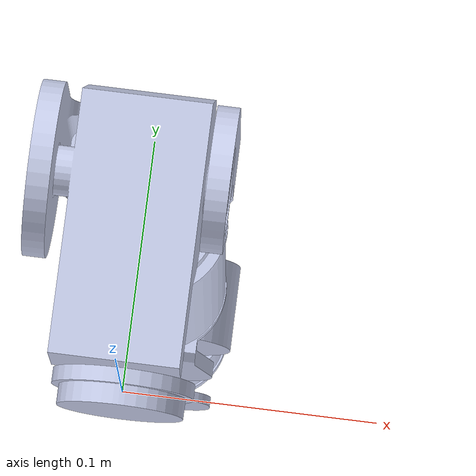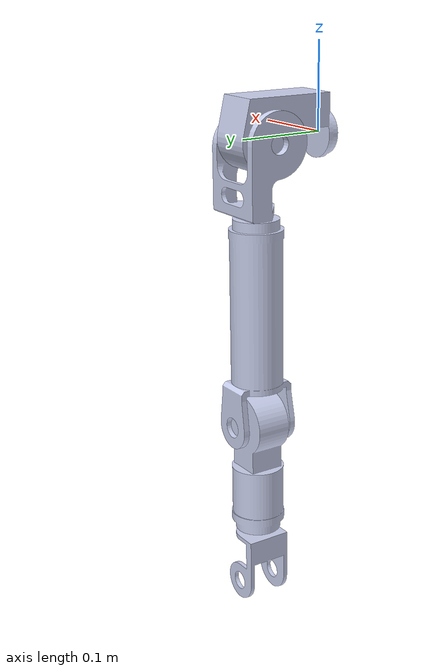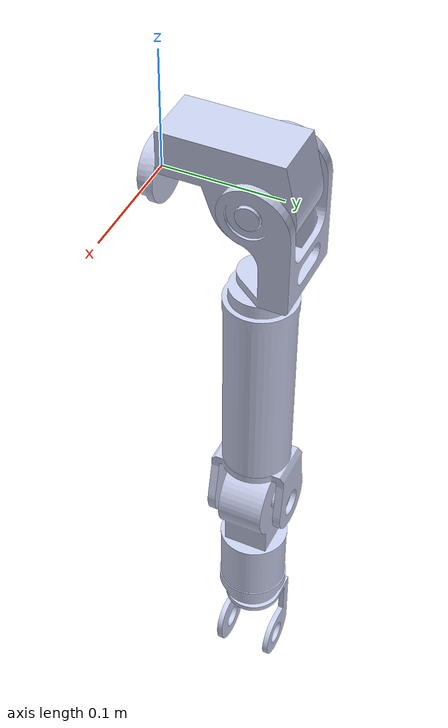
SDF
<?xml version='1.0'?>
<sdf version='1.6'>
  <model name='TEO_leftArm'>

    <link name='FrontalLeftShoulder_link'>
      <pose>0 0 0 0 -0 0</pose>
      <inertial>
        <pose>-0.002272 0.056186 0.008165 0 -0 0</pose>
        <mass>2</mass>
        <inertia>
          <ixx>0.004226791</ixx>
          <ixy>-0.0000855</ixy>
          <ixz>-0.0000117</ixz>
          <iyy>0.00212734</iyy>
          <iyz>0.000280493</iyz>
          <izz>0.00409322</izz>
        </inertia>
      </inertial>
      <visual name='FrontalLeftShoulder_visual'>
        <geometry>
          <mesh>
            <uri>model://teo/meshes/visual/FrontalLeftShoulder.dae</uri>
          </mesh>
        </geometry>
        <material>
          <ambient>0.792157 0.819608 0.933333 1</ambient>
          <diffuse>0.792157 0.819608 0.933333 1</diffuse>
          <specular>0.633726 0.655686 0.746667 1</specular>
          <emissive>0 0 0 1</emissive>
        </material>
      </visual>
      <collision name='FrontalLeftShoulder_collision'>
        <geometry>
          <mesh>
            <uri>model://teo/meshes/collision/FrontalLeftShoulder.stl</uri>
          </mesh>
        </geometry>
      </collision>
    </link>

    <joint name='FrontalLeftShoulder' type='revolute'>
      <parent>TEO_trunk::FrontalTrunk_link</parent>
      <child>TEO_leftArm::FrontalLeftShoulder_link</child>
      <axis>
        <xyz>0 1 0</xyz>
        <limit>
          <lower>-1.69</lower>
          <upper>1.98</upper>
        </limit>
        <dynamics>
          <damping>0.001</damping>
          <friction>0.7</friction>
        </dynamics>
      </axis>
    </joint>

    <link name='SagittalLeftShoulder_link'>
      <pose>0 0.084 0 0 -0 0</pose>
      <inertial>
        <pose>-0.008047 0.004937 -0.027619 0 -0 0</pose>
        <mass>1</mass>
        <inertia>
          <ixx>0.001610921</ixx>
          <ixy>0.000069</ixy>
          <ixz>-0.000214885</ixz>
          <iyy>0.002187768</iyy>
          <iyz>-0.000163004</iyz>
          <izz>0.001173531</izz>
        </inertia>
      </inertial>
      <visual name='SagittalLeftShoulder_visual'>
        <geometry>
          <mesh>
            <uri>model://teo/meshes/visual/SagittalLeftShoulder.dae</uri>
          </mesh>
        </geometry>
        <material>
          <ambient>0.792157 0.819608 0.933333 1</ambient>
          <diffuse>0.792157 0.819608 0.933333 1</diffuse>
          <specular>0.633726 0.655686 0.746667 1</specular>
          <emissive>0 0 0 1</emissive>
        </material>
      </visual>
      <collision name='SagittalLeftShoulder_collision'>
        <geometry>
          <mesh>
            <uri>model://teo/meshes/collision/SagittalLeftShoulder.stl</uri>
          </mesh>
        </geometry>
      </collision>
    </link>

    <joint name='SagittalLeftShoulder' type='revolute'>
      <parent>TEO_leftArm::FrontalLeftShoulder_link</parent>
      <child>TEO_leftArm::SagittalLeftShoulder_link</child>
      <axis>
        <xyz>1 0 0</xyz>
        <limit>
          <lower>-0.42</lower>
          <upper>1.34</upper>
        </limit>
        <dynamics>
          <damping>0.001</damping>
          <friction>0.7</friction>
        </dynamics>
      </axis>
    </joint>

    <link name='AxialLeftShoulder_link'>
      <pose>0 0.084 -0.329 0 -0 0</pose>
      <inertial>
        <pose>-0.000172 0.000249 0.100649 0 -0 0</pose>
      </inertial>
      <visual name='AxialLeftShoulder_visual'>
        <geometry>
          <mesh>
            <uri>model://teo/meshes/visual/AxialLeftShoulder.dae</uri>
          </mesh>
        </geometry>
        <material>
          <ambient>0.792157 0.819608 0.933333 1</ambient>
          <diffuse>0.792157 0.819608 0.933333 1</diffuse>
          <specular>0.633726 0.655686 0.746667 1</specular>
          <emissive>0 0 0 1</emissive>
        </material>
      </visual>
      <collision name='AxialLeftShoulder_collision'>
        <geometry>
          <mesh>
            <uri>model://teo/meshes/collision/AxialLeftShoulder.stl</uri>
          </mesh>
        </geometry>
      </collision>
    </link>

    <joint name='AxialLeftShoulder' type='revolute'>
      <parent>TEO_leftArm::SagittalLeftShoulder_link</parent>
      <child>TEO_leftArm::AxialLeftShoulder_link</child>
      <axis>
        <xyz>0 0 1</xyz>
        <limit>
          <lower>-0.9</lower>
          <upper>1.47</upper>
        </limit>
        <dynamics>
          <damping>0.001</damping>
          <friction>0.7</friction>
        </dynamics>
      </axis>
    </joint>

    <link name='FrontalLeftElbow_link'>
      <pose>0 0.084 -0.329 0 -0 0</pose>
      <inertial>
        <pose>0.000287 -0.000116 -0.053185 0 -0 0</pose>
        <mass>1</mass>
        <inertia>
          <ixx>0.002590029</ixx>
          <ixy>0</ixy>
          <ixz>0</ixz>
          <iyy>0.00262307</iyy>
          <iyz>0</iyz>
          <izz>0.000446024</izz>
        </inertia>
      </inertial>
      <visual name='FrontalLeftElbow_visual'>
        <geometry>
          <mesh>
            <uri>model://teo/meshes/visual/FrontalLeftElbow.dae</uri>
          </mesh>
        </geometry>
        <material>
          <ambient>0.792157 0.819608 0.933333 1</ambient>
          <diffuse>0.792157 0.819608 0.933333 1</diffuse>
          <specular>0.633726 0.655686 0.746667 1</specular>
          <emissive>0 0 0 1</emissive>
        </material>
      </visual>
      <collision name='FrontalLeftElbow_collision'>
        <geometry>
          <mesh>
            <uri>model://teo/meshes/collision/FrontalLeftElbow.stl</uri>
          </mesh>
        </geometry>
      </collision>
    </link>

    <joint name='FrontalLeftElbow' type='revolute'>
      <parent>TEO_leftArm::AxialLeftShoulder_link</parent>
      <child>TEO_leftArm::FrontalLeftElbow_link</child>
      <axis>
        <xyz>0 1 0</xyz>
        <limit>
          <lower>-1.76</lower>
          <upper>1.69</upper>
        </limit>
        <dynamics>
          <damping>0.001</damping>
          <friction>0.7</friction>
        </dynamics>
      </axis>
    </joint>

    <link name='AxialLeftWrist_link'>
      <pose>0 0.084 -0.531 0 -0 0</pose>
      <inertial>
        <pose>-0.001151 0.000603 0.02464 0 -0 0</pose>
        <mass>0.63149</mass>
      </inertial>
      <visual name='AxialLeftWrist_visual'>
        <geometry>
          <mesh>
            <uri>model://teo/meshes/visual/AxialLeftWrist.dae</uri>
          </mesh>
        </geometry>
        <material>
          <ambient>0.792157 0.819608 0.933333 1</ambient>
          <diffuse>0.792157 0.819608 0.933333 1</diffuse>
          <specular>0.633726 0.655686 0.746667 1</specular>
          <emissive>0 0 0 1</emissive>
        </material>
      </visual>
      <collision name='AxialLeftWrist_collision'>
        <geometry>
          <mesh>
            <uri>model://teo/meshes/collision/AxialLeftWrist.stl</uri>
          </mesh>
        </geometry>
      </collision>
    </link>

    <joint name='AxialLeftWrist' type='revolute'>
      <parent>TEO_leftArm::FrontalLeftElbow_link</parent>
      <child>TEO_leftArm::AxialLeftWrist_link</child>
      <axis>
        <xyz>0 0 1</xyz>
        <limit>
          <lower>-1.77</lower>
          <upper>1.33</upper>
        </limit>
        <dynamics>
          <damping>0.001</damping>
          <friction>0.7</friction>
        </dynamics>
      </axis>
    </joint>

    <link name='FrontalLeftWrist_link'>
      <pose>0 0.084 -0.531 0 -0 0</pose>
      <inertial>
        <pose>-0.002314 0.00007 -0.108635 0 -0 0</pose>
        <mass>0.72</mass>
        <inertia>
          <ixx>0.005330647</ixx>
          <ixy>0.000000128</ixy>
          <ixz>0.000100487</ixz>
          <iyy>0.005345282</iyy>
          <iyz>-0.00000807</iyz>
          <izz>0.000882489</izz>
        </inertia>
      </inertial>
      <visual name='FrontalLeftWrist_visual'>
        <pose>0 0 0 -1.5708 0 0</pose>
        <geometry>
          <mesh>
            <scale>0.001 0.001 0.001</scale>
            <uri>model://teo/meshes/visual/FrontalLeftWrist.dae</uri>
          </mesh>
        </geometry>
        <material>
          <ambient>0.792157 0.819608 0.933333 1</ambient>
          <diffuse>0.792157 0.819608 0.933333 1</diffuse>
          <specular>0.633726 0.655686 0.746667 1</specular>
          <emissive>0 0 0 1</emissive>
        </material>
      </visual>
      <collision name='FrontalLeftWrist_collision'>
        <pose>0 0 0 -1.5708 0 0</pose>
        <geometry>
          <mesh>
            <scale>0.001 0.001 0.001</scale>
            <uri>model://teo/meshes/collision/FrontalLeftWrist.stl</uri>
          </mesh>
        </geometry>
      </collision>
    </link>

    <joint name='FrontalLeftWrist' type='revolute'>
      <parent>TEO_leftArm::AxialLeftWrist_link</parent>
      <child>TEO_leftArm::FrontalLeftWrist_link</child>
      <axis>
        <xyz>0 1 0</xyz>
        <limit>
          <lower>-1.98</lower>
          <upper>1.07</upper>
        </limit>
        <dynamics>
          <damping>0.001</damping>
          <friction>0.7</friction>
        </dynamics>
      </axis>
    </joint>

    <link name='LeftSensorPlate_link'>
      <pose>0 0.084 -0.63401 0 -0 0</pose>
      <inertial>
        <mass>0.001</mass> <!-- can't be zero! -->
      </inertial>
    </link>

    <joint name='LeftSensorPlate' type='fixed'>
      <parent>TEO_leftArm::FrontalLeftWrist_link</parent>
      <child>TEO_leftArm::LeftSensorPlate_link</child>
      <pose>0 0 0 0 3.141593 0</pose>
      <sensor name="leftArm_ft" type="force_torque">
        <always_on>true</always_on>
        <update_rate>200</update_rate>
        <force_torque>
          <frame>sensor</frame>
          <measure_direction>child_to_parent</measure_direction>
        </force_torque>
        <plugin name='leftArm_ft_plugin' filename='libgazebo_yarp_forcetorque.so'>
          <yarpConfigurationString>(yarpDeviceName forceTorque_leftArm) (disableImplicitNetworkWrapper)</yarpConfigurationString>
        </plugin>
      </sensor>
    </joint>

    <plugin name='controlboard_leftArm' filename='libgazebo_yarp_controlboard.so'>
      <yarpConfigurationFile>model://teo/conf/gazebo_teo_leftArm.ini</yarpConfigurationFile>
    </plugin>

  </model>
</sdf>
